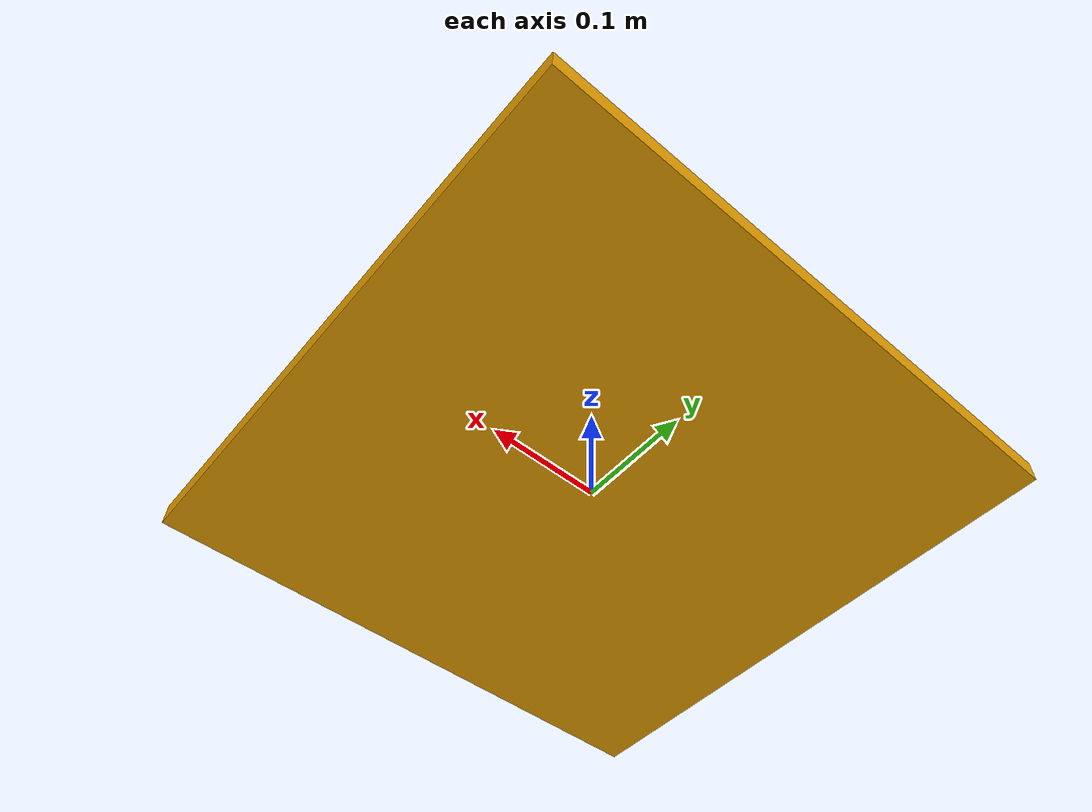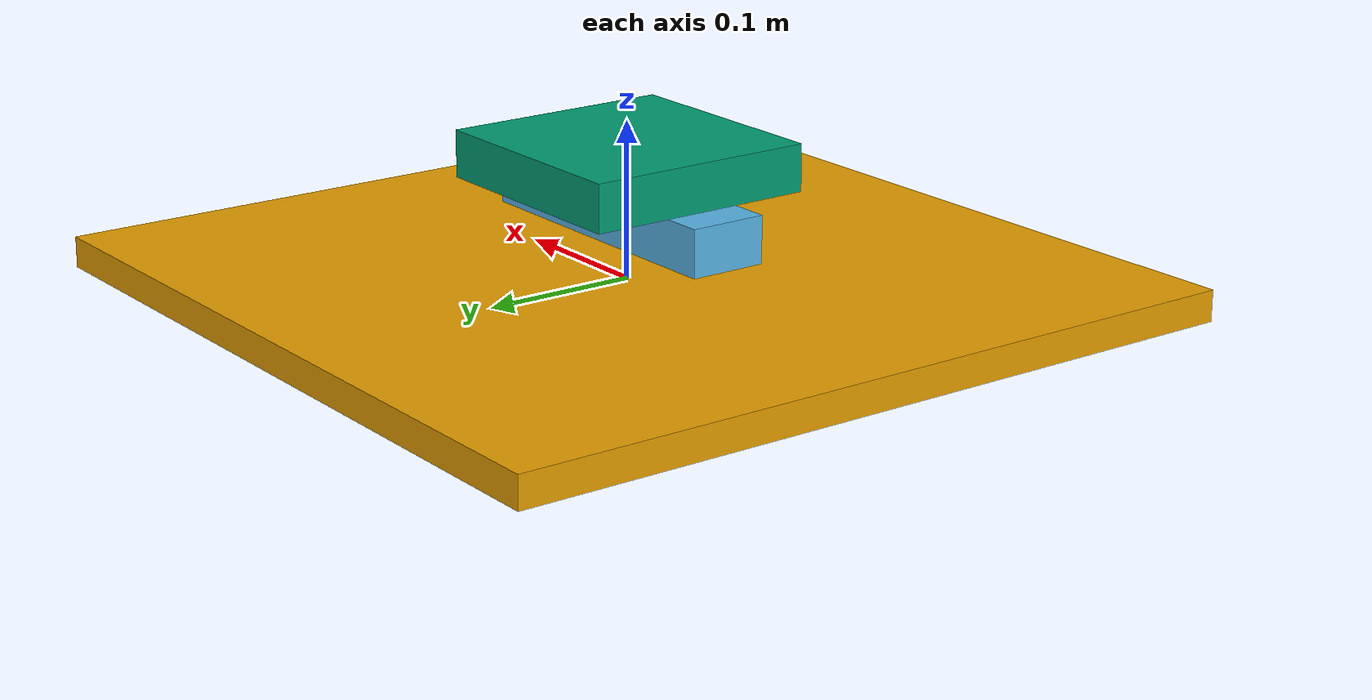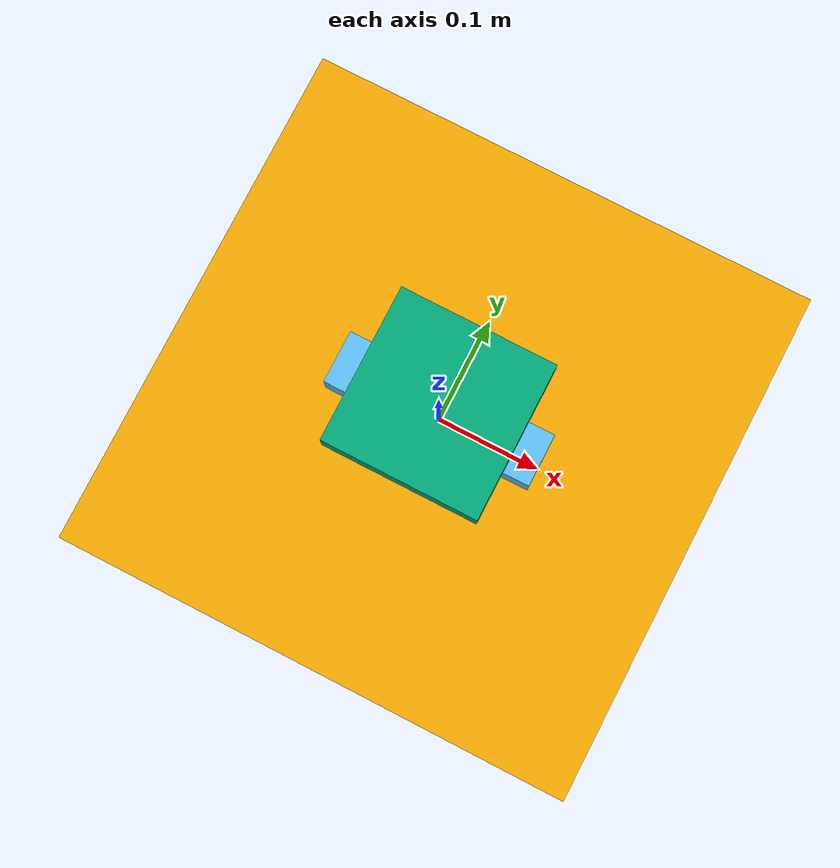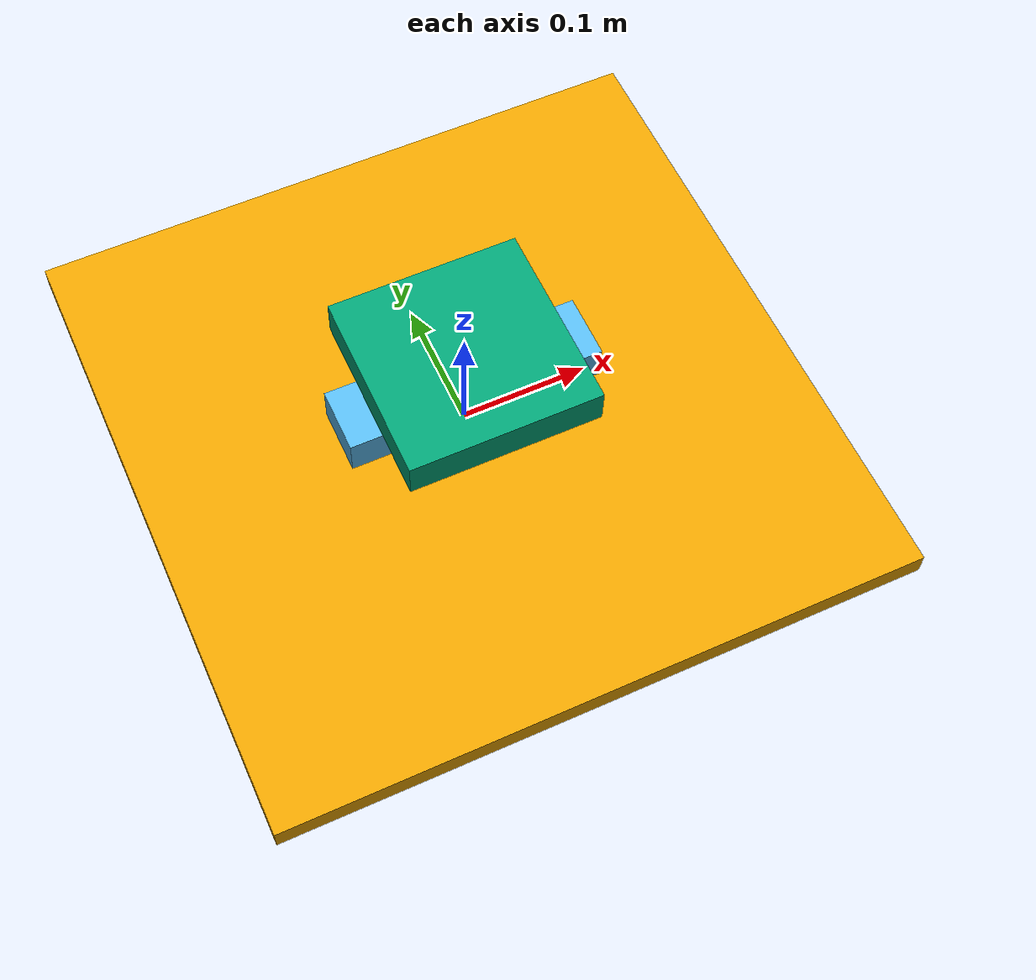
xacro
<?xml version="1.0"?>
<robot xmlns:xacro="http://www.ros.org/wiki/xacro"
       name="airtable">

  <!-- Parameters -->

  <xacro:property name="table_x_min" value="-0.1"/>
  <xacro:property name="table_x_max" value="0.1"/>
  <xacro:property name="table_y_min" value="-0.1"/>
  <xacro:property name="table_y_max" value="0.1"/>

  <!-- Base -->

  <link name="base_link">
    <visual>
      <geometry>
        <box size="0.5 0.5 0.02"/>
      </geometry>
    </visual>
  </link>

  <!-- X stage -->

  <link name="x_stage_link">
    <visual>
      <origin xyz="0 0 0.025"/>
      <geometry>
        <box size="0.20 0.05 0.03"/>
      </geometry>
    </visual>
  </link>

  <joint name="table_x" type="prismatic">
    <parent link="base_link"/>
    <child link="x_stage_link"/>

    <origin xyz="0 0 0.02" rpy="0 0 0"/>

    <axis xyz="1 0 0"/>

    <limit
      lower="${table_x_min}"
      upper="${table_x_max}"
      effort="100"
      velocity="0.2"/>
  </joint>

  <!-- Y stage -->

  <link name="table_link">
    <visual>
      <origin xyz="0 0 0.025"/>
      <geometry>
        <box size="0.15 0.15 0.03"/>
      </geometry>
    </visual>
  </link>

  <joint name="table_y" type="prismatic">
    <parent link="x_stage_link"/>
    <child link="table_link"/>

    <origin xyz="0 0 0.03" rpy="0 0 0"/>

    <axis xyz="0 1 0"/>

    <limit
      lower="${table_y_min}"
      upper="${table_y_max}"
      effort="100"
      velocity="0.2"/>
  </joint>

</robot>
